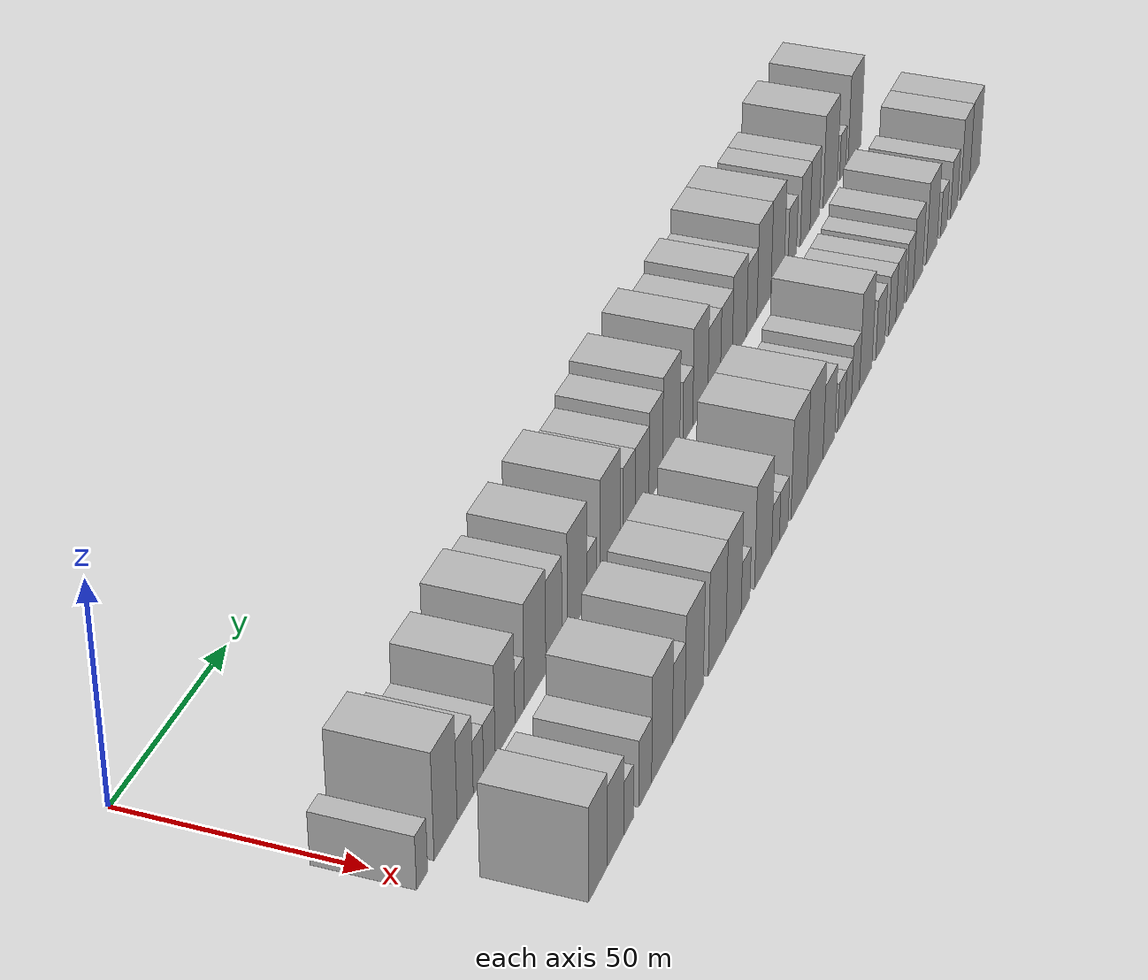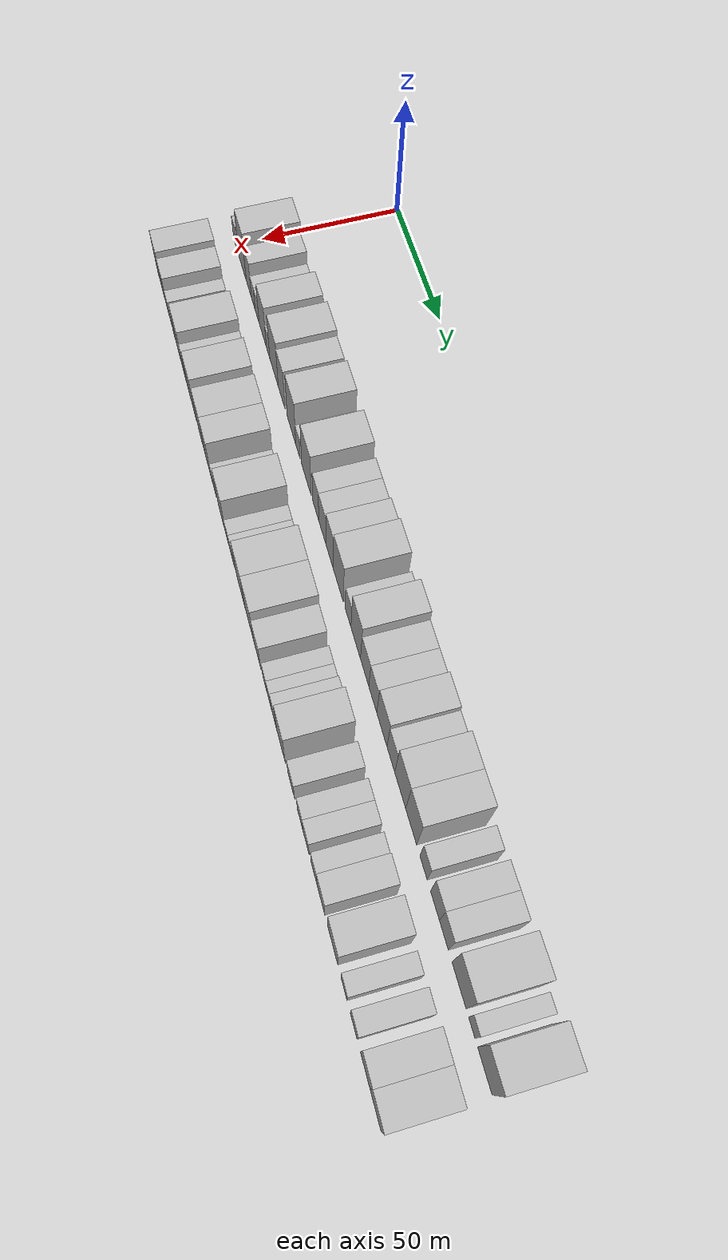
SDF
<sdf version="1.6">
 <world name="default">
  <model name="building_27">
   <static>1</static>
   <pose>50.0000 0.0869 0 0.000000 0.000000 0.000000</pose>
   <link name="link">
    <pose>0 0 6.00 0 0 0</pose>
    <collision name="collision"><geometry><box><size>20.0000 5.1384 12.0000</size></box></geometry></collision>
    <visual name="visual">
     <cast_shadows>0</cast_shadows>
     <geometry><box><size>20.0000 5.1384 12.0000</size></box></geometry>
     <material>
      <script>
       <uri>model://HANNAS_wall/materials/scripts</uri>
       <uri>model://HANNAS_wall/materials/textures</uri>
       <name>vrc/HANNAS_wall</name>
      </script>
     </material>
    </visual>
   </link>
  </model>
  <model name="building_28">
   <static>1</static>
   <pose>50.0000 11.1717 0 0.000000 0.000000 0.000000</pose>
   <link name="link">
    <pose>0 0 12.00 0 0 0</pose>
    <collision name="collision"><geometry><box><size>20.0000 11.0312 24.0000</size></box></geometry></collision>
    <visual name="visual">
     <cast_shadows>0</cast_shadows>
     <geometry><box><size>20.0000 11.0312 24.0000</size></box></geometry>
     <material>
      <script>
       <uri>model://HANNAS_wall/materials/scripts</uri>
       <uri>model://HANNAS_wall/materials/textures</uri>
       <name>vrc/HANNAS_wall</name>
      </script>
     </material>
    </visual>
   </link>
  </model>
  <model name="building_29">
   <static>1</static>
   <pose>50.0000 20.5993 0 0.000000 0.000000 0.000000</pose>
   <link name="link">
    <pose>0 0 9.00 0 0 0</pose>
    <collision name="collision"><geometry><box><size>20.0000 7.8240 18.0000</size></box></geometry></collision>
    <visual name="visual">
     <cast_shadows>0</cast_shadows>
     <geometry><box><size>20.0000 7.8240 18.0000</size></box></geometry>
     <material>
      <script>
       <uri>model://HANNAS_wall/materials/scripts</uri>
       <uri>model://HANNAS_wall/materials/textures</uri>
       <name>vrc/HANNAS_wall</name>
      </script>
     </material>
    </visual>
   </link>
  </model>
  <model name="building_30">
   <static>1</static>
   <pose>50.0000 27.1070 0 0.000000 0.000000 0.000000</pose>
   <link name="link">
    <pose>0 0 6.00 0 0 0</pose>
    <collision name="collision"><geometry><box><size>20.0000 5.1913 12.0000</size></box></geometry></collision>
    <visual name="visual">
     <cast_shadows>0</cast_shadows>
     <geometry><box><size>20.0000 5.1913 12.0000</size></box></geometry>
     <material>
      <script>
       <uri>model://HANNAS_wall/materials/scripts</uri>
       <uri>model://HANNAS_wall/materials/textures</uri>
       <name>vrc/HANNAS_wall</name>
      </script>
     </material>
    </visual>
   </link>
  </model>
  <model name="building_31">
   <static>1</static>
   <pose>50.0000 32.6259 0 0.000000 0.000000 0.000000</pose>
   <link name="link">
    <pose>0 0 6.00 0 0 0</pose>
    <collision name="collision"><geometry><box><size>20.0000 5.8464 12.0000</size></box></geometry></collision>
    <visual name="visual">
     <cast_shadows>0</cast_shadows>
     <geometry><box><size>20.0000 5.8464 12.0000</size></box></geometry>
     <material>
      <script>
       <uri>model://HANNAS_wall/materials/scripts</uri>
       <uri>model://HANNAS_wall/materials/textures</uri>
       <name>vrc/HANNAS_wall</name>
      </script>
     </material>
    </visual>
   </link>
  </model>
  <model name="building_32">
   <static>1</static>
   <pose>50.0000 40.5985 0 0.000000 0.000000 0.000000</pose>
   <link name="link">
    <pose>0 0 10.50 0 0 0</pose>
    <collision name="collision"><geometry><box><size>20.0000 10.0989 21.0000</size></box></geometry></collision>
    <visual name="visual">
     <cast_shadows>0</cast_shadows>
     <geometry><box><size>20.0000 10.0989 21.0000</size></box></geometry>
     <material>
      <script>
       <uri>model://HANNAS_wall/materials/scripts</uri>
       <uri>model://HANNAS_wall/materials/textures</uri>
       <name>vrc/HANNAS_wall</name>
      </script>
     </material>
    </visual>
   </link>
  </model>
  <model name="building_33">
   <static>1</static>
   <pose>50.0000 48.1005 0 0.000000 0.000000 0.000000</pose>
   <link name="link">
    <pose>0 0 6.00 0 0 0</pose>
    <collision name="collision"><geometry><box><size>20.0000 4.9049 12.0000</size></box></geometry></collision>
    <visual name="visual">
     <cast_shadows>0</cast_shadows>
     <geometry><box><size>20.0000 4.9049 12.0000</size></box></geometry>
     <material>
      <script>
       <uri>model://HANNAS_wall/materials/scripts</uri>
       <uri>model://HANNAS_wall/materials/textures</uri>
       <name>vrc/HANNAS_wall</name>
      </script>
     </material>
    </visual>
   </link>
  </model>
  <model name="building_34">
   <static>1</static>
   <pose>50.0000 56.3387 0 0.000000 0.000000 0.000000</pose>
   <link name="link">
    <pose>0 0 12.00 0 0 0</pose>
    <collision name="collision"><geometry><box><size>20.0000 11.5715 24.0000</size></box></geometry></collision>
    <visual name="visual">
     <cast_shadows>0</cast_shadows>
     <geometry><box><size>20.0000 11.5715 24.0000</size></box></geometry>
     <material>
      <script>
       <uri>model://HANNAS_wall/materials/scripts</uri>
       <uri>model://HANNAS_wall/materials/textures</uri>
       <name>vrc/HANNAS_wall</name>
      </script>
     </material>
    </visual>
   </link>
  </model>
  <model name="building_35">
   <static>1</static>
   <pose>50.0000 66.5732 0 0.000000 0.000000 0.000000</pose>
   <link name="link">
    <pose>0 0 10.50 0 0 0</pose>
    <collision name="collision"><geometry><box><size>20.0000 8.8975 21.0000</size></box></geometry></collision>
    <visual name="visual">
     <cast_shadows>0</cast_shadows>
     <geometry><box><size>20.0000 8.8975 21.0000</size></box></geometry>
     <material>
      <script>
       <uri>model://HANNAS_wall/materials/scripts</uri>
       <uri>model://HANNAS_wall/materials/textures</uri>
       <name>vrc/HANNAS_wall</name>
      </script>
     </material>
    </visual>
   </link>
  </model>
  <model name="building_36">
   <static>1</static>
   <pose>50.0000 79.5994 0 0.000000 0.000000 0.000000</pose>
   <link name="link">
    <pose>0 0 12.00 0 0 0</pose>
    <collision name="collision"><geometry><box><size>20.0000 11.1550 24.0000</size></box></geometry></collision>
    <visual name="visual">
     <cast_shadows>0</cast_shadows>
     <geometry><box><size>20.0000 11.1550 24.0000</size></box></geometry>
     <material>
      <script>
       <uri>model://HANNAS_wall/materials/scripts</uri>
       <uri>model://HANNAS_wall/materials/textures</uri>
       <name>vrc/HANNAS_wall</name>
      </script>
     </material>
    </visual>
   </link>
  </model>
  <model name="building_37">
   <static>1</static>
   <pose>50.0000 87.9173 0 0.000000 0.000000 0.000000</pose>
   <link name="link">
    <pose>0 0 6.00 0 0 0</pose>
    <collision name="collision"><geometry><box><size>20.0000 5.4807 12.0000</size></box></geometry></collision>
    <visual name="visual">
     <cast_shadows>0</cast_shadows>
     <geometry><box><size>20.0000 5.4807 12.0000</size></box></geometry>
     <material>
      <script>
       <uri>model://HANNAS_wall/materials/scripts</uri>
       <uri>model://HANNAS_wall/materials/textures</uri>
       <name>vrc/HANNAS_wall</name>
      </script>
     </material>
    </visual>
   </link>
  </model>
  <model name="building_38">
   <static>1</static>
   <pose>50.0000 98.5186 0 0.000000 0.000000 0.000000</pose>
   <link name="link">
    <pose>0 0 12.00 0 0 0</pose>
    <collision name="collision"><geometry><box><size>20.0000 11.7219 24.0000</size></box></geometry></collision>
    <visual name="visual">
     <cast_shadows>0</cast_shadows>
     <geometry><box><size>20.0000 11.7219 24.0000</size></box></geometry>
     <material>
      <script>
       <uri>model://HANNAS_wall/materials/scripts</uri>
       <uri>model://HANNAS_wall/materials/textures</uri>
       <name>vrc/HANNAS_wall</name>
      </script>
     </material>
    </visual>
   </link>
  </model>
  <model name="building_39">
   <static>1</static>
   <pose>50.0000 109.9865 0 0.000000 0.000000 0.000000</pose>
   <link name="link">
    <pose>0 0 9.00 0 0 0</pose>
    <collision name="collision"><geometry><box><size>20.0000 7.2139 18.0000</size></box></geometry></collision>
    <visual name="visual">
     <cast_shadows>0</cast_shadows>
     <geometry><box><size>20.0000 7.2139 18.0000</size></box></geometry>
     <material>
      <script>
       <uri>model://HANNAS_wall/materials/scripts</uri>
       <uri>model://HANNAS_wall/materials/textures</uri>
       <name>vrc/HANNAS_wall</name>
      </script>
     </material>
    </visual>
   </link>
  </model>
  <model name="building_40">
   <static>1</static>
   <pose>50.0000 117.9040 0 0.000000 0.000000 0.000000</pose>
   <link name="link">
    <pose>0 0 9.00 0 0 0</pose>
    <collision name="collision"><geometry><box><size>20.0000 8.6211 18.0000</size></box></geometry></collision>
    <visual name="visual">
     <cast_shadows>0</cast_shadows>
     <geometry><box><size>20.0000 8.6211 18.0000</size></box></geometry>
     <material>
      <script>
       <uri>model://HANNAS_wall/materials/scripts</uri>
       <uri>model://HANNAS_wall/materials/textures</uri>
       <name>vrc/HANNAS_wall</name>
      </script>
     </material>
    </visual>
   </link>
  </model>
  <model name="building_41">
   <static>1</static>
   <pose>50.0000 126.5039 0 0.000000 0.000000 0.000000</pose>
   <link name="link">
    <pose>0 0 10.50 0 0 0</pose>
    <collision name="collision"><geometry><box><size>20.0000 8.5786 21.0000</size></box></geometry></collision>
    <visual name="visual">
     <cast_shadows>0</cast_shadows>
     <geometry><box><size>20.0000 8.5786 21.0000</size></box></geometry>
     <material>
      <script>
       <uri>model://HANNAS_wall/materials/scripts</uri>
       <uri>model://HANNAS_wall/materials/textures</uri>
       <name>vrc/HANNAS_wall</name>
      </script>
     </material>
    </visual>
   </link>
  </model>
  <model name="building_42">
   <static>1</static>
   <pose>50.0000 136.4017 0 0.000000 0.000000 0.000000</pose>
   <link name="link">
    <pose>0 0 12.00 0 0 0</pose>
    <collision name="collision"><geometry><box><size>20.0000 11.2170 24.0000</size></box></geometry></collision>
    <visual name="visual">
     <cast_shadows>0</cast_shadows>
     <geometry><box><size>20.0000 11.2170 24.0000</size></box></geometry>
     <material>
      <script>
       <uri>model://HANNAS_wall/materials/scripts</uri>
       <uri>model://HANNAS_wall/materials/textures</uri>
       <name>vrc/HANNAS_wall</name>
      </script>
     </material>
    </visual>
   </link>
  </model>
  <model name="building_43">
   <static>1</static>
   <pose>50.0000 147.2961 0 0.000000 0.000000 0.000000</pose>
   <link name="link">
    <pose>0 0 7.50 0 0 0</pose>
    <collision name="collision"><geometry><box><size>20.0000 6.5718 15.0000</size></box></geometry></collision>
    <visual name="visual">
     <cast_shadows>0</cast_shadows>
     <geometry><box><size>20.0000 6.5718 15.0000</size></box></geometry>
     <material>
      <script>
       <uri>model://HANNAS_wall/materials/scripts</uri>
       <uri>model://HANNAS_wall/materials/textures</uri>
       <name>vrc/HANNAS_wall</name>
      </script>
     </material>
    </visual>
   </link>
  </model>
  <model name="building_44">
   <static>1</static>
   <pose>50.0000 155.6939 0 0.000000 0.000000 0.000000</pose>
   <link name="link">
    <pose>0 0 12.00 0 0 0</pose>
    <collision name="collision"><geometry><box><size>20.0000 10.2238 24.0000</size></box></geometry></collision>
    <visual name="visual">
     <cast_shadows>0</cast_shadows>
     <geometry><box><size>20.0000 10.2238 24.0000</size></box></geometry>
     <material>
      <script>
       <uri>model://HANNAS_wall/materials/scripts</uri>
       <uri>model://HANNAS_wall/materials/textures</uri>
       <name>vrc/HANNAS_wall</name>
      </script>
     </material>
    </visual>
   </link>
  </model>
  <model name="building_45">
   <static>1</static>
   <pose>50.0000 165.1732 0 0.000000 0.000000 0.000000</pose>
   <link name="link">
    <pose>0 0 9.00 0 0 0</pose>
    <collision name="collision"><geometry><box><size>20.0000 8.7346 18.0000</size></box></geometry></collision>
    <visual name="visual">
     <cast_shadows>0</cast_shadows>
     <geometry><box><size>20.0000 8.7346 18.0000</size></box></geometry>
     <material>
      <script>
       <uri>model://HANNAS_wall/materials/scripts</uri>
       <uri>model://HANNAS_wall/materials/textures</uri>
       <name>vrc/HANNAS_wall</name>
      </script>
     </material>
    </visual>
   </link>
  </model>
  <model name="building_46">
   <static>1</static>
   <pose>50.0000 173.6865 0 0.000000 0.000000 0.000000</pose>
   <link name="link">
    <pose>0 0 9.00 0 0 0</pose>
    <collision name="collision"><geometry><box><size>20.0000 8.2920 18.0000</size></box></geometry></collision>
    <visual name="visual">
     <cast_shadows>0</cast_shadows>
     <geometry><box><size>20.0000 8.2920 18.0000</size></box></geometry>
     <material>
      <script>
       <uri>model://HANNAS_wall/materials/scripts</uri>
       <uri>model://HANNAS_wall/materials/textures</uri>
       <name>vrc/HANNAS_wall</name>
      </script>
     </material>
    </visual>
   </link>
  </model>
  <model name="building_47">
   <static>1</static>
   <pose>50.0000 182.9807 0 0.000000 0.000000 0.000000</pose>
   <link name="link">
    <pose>0 0 10.50 0 0 0</pose>
    <collision name="collision"><geometry><box><size>20.0000 10.2964 21.0000</size></box></geometry></collision>
    <visual name="visual">
     <cast_shadows>0</cast_shadows>
     <geometry><box><size>20.0000 10.2964 21.0000</size></box></geometry>
     <material>
      <script>
       <uri>model://HANNAS_wall/materials/scripts</uri>
       <uri>model://HANNAS_wall/materials/textures</uri>
       <name>vrc/HANNAS_wall</name>
      </script>
     </material>
    </visual>
   </link>
  </model>
  <model name="building_48">
   <static>1</static>
   <pose>50.0000 191.9526 0 0.000000 0.000000 0.000000</pose>
   <link name="link">
    <pose>0 0 9.00 0 0 0</pose>
    <collision name="collision"><geometry><box><size>20.0000 7.6473 18.0000</size></box></geometry></collision>
    <visual name="visual">
     <cast_shadows>0</cast_shadows>
     <geometry><box><size>20.0000 7.6473 18.0000</size></box></geometry>
     <material>
      <script>
       <uri>model://HANNAS_wall/materials/scripts</uri>
       <uri>model://HANNAS_wall/materials/textures</uri>
       <name>vrc/HANNAS_wall</name>
      </script>
     </material>
    </visual>
   </link>
  </model>
  <model name="building_49">
   <static>1</static>
   <pose>50.0000 201.0170 0 0.000000 0.000000 0.000000</pose>
   <link name="link">
    <pose>0 0 12.00 0 0 0</pose>
    <collision name="collision"><geometry><box><size>20.0000 10.4815 24.0000</size></box></geometry></collision>
    <visual name="visual">
     <cast_shadows>0</cast_shadows>
     <geometry><box><size>20.0000 10.4815 24.0000</size></box></geometry>
     <material>
      <script>
       <uri>model://HANNAS_wall/materials/scripts</uri>
       <uri>model://HANNAS_wall/materials/textures</uri>
       <name>vrc/HANNAS_wall</name>
      </script>
     </material>
    </visual>
   </link>
  </model>
  <model name="building_50">
   <static>1</static>
   <pose>50.0000 211.3477 0 0.000000 0.000000 0.000000</pose>
   <link name="link">
    <pose>0 0 12.00 0 0 0</pose>
    <collision name="collision"><geometry><box><size>20.0000 10.1798 24.0000</size></box></geometry></collision>
    <visual name="visual">
     <cast_shadows>0</cast_shadows>
     <geometry><box><size>20.0000 10.1798 24.0000</size></box></geometry>
     <material>
      <script>
       <uri>model://HANNAS_wall/materials/scripts</uri>
       <uri>model://HANNAS_wall/materials/textures</uri>
       <name>vrc/HANNAS_wall</name>
      </script>
     </material>
    </visual>
   </link>
  </model>
  <model name="building_51">
   <static>1</static>
   <pose>50.0000 222.7443 0 0.000000 0.000000 0.000000</pose>
   <link name="link">
    <pose>0 0 7.50 0 0 0</pose>
    <collision name="collision"><geometry><box><size>20.0000 6.6134 15.0000</size></box></geometry></collision>
    <visual name="visual">
     <cast_shadows>0</cast_shadows>
     <geometry><box><size>20.0000 6.6134 15.0000</size></box></geometry>
     <material>
      <script>
       <uri>model://HANNAS_wall/materials/scripts</uri>
       <uri>model://HANNAS_wall/materials/textures</uri>
       <name>vrc/HANNAS_wall</name>
      </script>
     </material>
    </visual>
   </link>
  </model>
  <model name="building_52">
   <static>1</static>
   <pose>50.0000 232.9578 0 0.000000 0.000000 0.000000</pose>
   <link name="link">
    <pose>0 0 9.00 0 0 0</pose>
    <collision name="collision"><geometry><box><size>20.0000 7.8135 18.0000</size></box></geometry></collision>
    <visual name="visual">
     <cast_shadows>0</cast_shadows>
     <geometry><box><size>20.0000 7.8135 18.0000</size></box></geometry>
     <material>
      <script>
       <uri>model://HANNAS_wall/materials/scripts</uri>
       <uri>model://HANNAS_wall/materials/textures</uri>
       <name>vrc/HANNAS_wall</name>
      </script>
     </material>
    </visual>
   </link>
  </model>
  <model name="building_53">
   <static>1</static>
   <pose>50.0000 240.6961 0 0.000000 0.000000 0.000000</pose>
   <link name="link">
    <pose>0 0 9.00 0 0 0</pose>
    <collision name="collision"><geometry><box><size>20.0000 7.6631 18.0000</size></box></geometry></collision>
    <visual name="visual">
     <cast_shadows>0</cast_shadows>
     <geometry><box><size>20.0000 7.6631 18.0000</size></box></geometry>
     <material>
      <script>
       <uri>model://HANNAS_wall/materials/scripts</uri>
       <uri>model://HANNAS_wall/materials/textures</uri>
       <name>vrc/HANNAS_wall</name>
      </script>
     </material>
    </visual>
   </link>
  </model>
  <model name="building_54">
   <static>1</static>
   <pose>50.0000 253.4060 0 0.000000 0.000000 0.000000</pose>
   <link name="link">
    <pose>0 0 12.00 0 0 0</pose>
    <collision name="collision"><geometry><box><size>20.0000 11.7568 24.0000</size></box></geometry></collision>
    <visual name="visual">
     <cast_shadows>0</cast_shadows>
     <geometry><box><size>20.0000 11.7568 24.0000</size></box></geometry>
     <material>
      <script>
       <uri>model://HANNAS_wall/materials/scripts</uri>
       <uri>model://HANNAS_wall/materials/textures</uri>
       <name>vrc/HANNAS_wall</name>
      </script>
     </material>
    </visual>
   </link>
  </model>
  <model name="building_55">
   <static>1</static>
   <pose>50.0000 263.8791 0 0.000000 0.000000 0.000000</pose>
   <link name="link">
    <pose>0 0 6.00 0 0 0</pose>
    <collision name="collision"><geometry><box><size>20.0000 5.1895 12.0000</size></box></geometry></collision>
    <visual name="visual">
     <cast_shadows>0</cast_shadows>
     <geometry><box><size>20.0000 5.1895 12.0000</size></box></geometry>
     <material>
      <script>
       <uri>model://HANNAS_wall/materials/scripts</uri>
       <uri>model://HANNAS_wall/materials/textures</uri>
       <name>vrc/HANNAS_wall</name>
      </script>
     </material>
    </visual>
   </link>
  </model>
  <model name="building_56">
   <static>1</static>
   <pose>50.0000 274.1354 0 0.000000 0.000000 0.000000</pose>
   <link name="link">
    <pose>0 0 12.00 0 0 0</pose>
    <collision name="collision"><geometry><box><size>20.0000 11.3231 24.0000</size></box></geometry></collision>
    <visual name="visual">
     <cast_shadows>0</cast_shadows>
     <geometry><box><size>20.0000 11.3231 24.0000</size></box></geometry>
     <material>
      <script>
       <uri>model://HANNAS_wall/materials/scripts</uri>
       <uri>model://HANNAS_wall/materials/textures</uri>
       <name>vrc/HANNAS_wall</name>
      </script>
     </material>
    </visual>
   </link>
  </model>
  <model name="building_90">
   <static>1</static>
   <pose>79.0000 9.2190 0 0.000000 0.000000 0.000000</pose>
   <link name="link">
    <pose>0 0 10.50 0 0 0</pose>
    <collision name="collision"><geometry><box><size>20.0000 9.6931 21.0000</size></box></geometry></collision>
    <visual name="visual">
     <cast_shadows>0</cast_shadows>
     <geometry><box><size>20.0000 9.6931 21.0000</size></box></geometry>
     <material>
      <script>
       <uri>model://HANNAS_wall/materials/scripts</uri>
       <uri>model://HANNAS_wall/materials/textures</uri>
       <name>vrc/HANNAS_wall</name>
      </script>
     </material>
    </visual>
   </link>
  </model>
  <model name="building_91">
   <static>1</static>
   <pose>79.0000 18.4818 0 0.000000 0.000000 0.000000</pose>
   <link name="link">
    <pose>0 0 9.00 0 0 0</pose>
    <collision name="collision"><geometry><box><size>20.0000 8.8325 18.0000</size></box></geometry></collision>
    <visual name="visual">
     <cast_shadows>0</cast_shadows>
     <geometry><box><size>20.0000 8.8325 18.0000</size></box></geometry>
     <material>
      <script>
       <uri>model://HANNAS_wall/materials/scripts</uri>
       <uri>model://HANNAS_wall/materials/textures</uri>
       <name>vrc/HANNAS_wall</name>
      </script>
     </material>
    </visual>
   </link>
  </model>
  <model name="building_92">
   <static>1</static>
   <pose>79.0000 25.4806 0 0.000000 0.000000 0.000000</pose>
   <link name="link">
    <pose>0 0 6.00 0 0 0</pose>
    <collision name="collision"><geometry><box><size>20.0000 5.1649 12.0000</size></box></geometry></collision>
    <visual name="visual">
     <cast_shadows>0</cast_shadows>
     <geometry><box><size>20.0000 5.1649 12.0000</size></box></geometry>
     <material>
      <script>
       <uri>model://HANNAS_wall/materials/scripts</uri>
       <uri>model://HANNAS_wall/materials/textures</uri>
       <name>vrc/HANNAS_wall</name>
      </script>
     </material>
    </visual>
   </link>
  </model>
  <model name="building_93">
   <static>1</static>
   <pose>79.0000 34.5791 0 0.000000 0.000000 0.000000</pose>
   <link name="link">
    <pose>0 0 7.50 0 0 0</pose>
    <collision name="collision"><geometry><box><size>20.0000 7.0321 15.0000</size></box></geometry></collision>
    <visual name="visual">
     <cast_shadows>0</cast_shadows>
     <geometry><box><size>20.0000 7.0321 15.0000</size></box></geometry>
     <material>
      <script>
       <uri>model://HANNAS_wall/materials/scripts</uri>
       <uri>model://HANNAS_wall/materials/textures</uri>
       <name>vrc/HANNAS_wall</name>
      </script>
     </material>
    </visual>
   </link>
  </model>
  <model name="building_94">
   <static>1</static>
   <pose>79.0000 43.9708 0 0.000000 0.000000 0.000000</pose>
   <link name="link">
    <pose>0 0 12.00 0 0 0</pose>
    <collision name="collision"><geometry><box><size>20.0000 11.7512 24.0000</size></box></geometry></collision>
    <visual name="visual">
     <cast_shadows>0</cast_shadows>
     <geometry><box><size>20.0000 11.7512 24.0000</size></box></geometry>
     <material>
      <script>
       <uri>model://HANNAS_wall/materials/scripts</uri>
       <uri>model://HANNAS_wall/materials/textures</uri>
       <name>vrc/HANNAS_wall</name>
      </script>
     </material>
    </visual>
   </link>
  </model>
  <model name="building_95">
   <static>1</static>
   <pose>79.0000 53.4867 0 0.000000 0.000000 0.000000</pose>
   <link name="link">
    <pose>0 0 9.00 0 0 0</pose>
    <collision name="collision"><geometry><box><size>20.0000 7.2806 18.0000</size></box></geometry></collision>
    <visual name="visual">
     <cast_shadows>0</cast_shadows>
     <geometry><box><size>20.0000 7.2806 18.0000</size></box></geometry>
     <material>
      <script>
       <uri>model://HANNAS_wall/materials/scripts</uri>
       <uri>model://HANNAS_wall/materials/textures</uri>
       <name>vrc/HANNAS_wall</name>
      </script>
     </material>
    </visual>
   </link>
  </model>
  <model name="building_96">
   <static>1</static>
   <pose>79.0000 62.6591 0 0.000000 0.000000 0.000000</pose>
   <link name="link">
    <pose>0 0 12.00 0 0 0</pose>
    <collision name="collision"><geometry><box><size>20.0000 11.0643 24.0000</size></box></geometry></collision>
    <visual name="visual">
     <cast_shadows>0</cast_shadows>
     <geometry><box><size>20.0000 11.0643 24.0000</size></box></geometry>
     <material>
      <script>
       <uri>model://HANNAS_wall/materials/scripts</uri>
       <uri>model://HANNAS_wall/materials/textures</uri>
       <name>vrc/HANNAS_wall</name>
      </script>
     </material>
    </visual>
   </link>
  </model>
  <model name="building_97">
   <static>1</static>
   <pose>79.0000 76.6093 0 0.000000 0.000000 0.000000</pose>
   <link name="link">
    <pose>0 0 12.00 0 0 0</pose>
    <collision name="collision"><geometry><box><size>20.0000 10.8360 24.0000</size></box></geometry></collision>
    <visual name="visual">
     <cast_shadows>0</cast_shadows>
     <geometry><box><size>20.0000 10.8360 24.0000</size></box></geometry>
     <material>
      <script>
       <uri>model://HANNAS_wall/materials/scripts</uri>
       <uri>model://HANNAS_wall/materials/textures</uri>
       <name>vrc/HANNAS_wall</name>
      </script>
     </material>
    </visual>
   </link>
  </model>
  <model name="building_98">
   <static>1</static>
   <pose>79.0000 86.8647 0 0.000000 0.000000 0.000000</pose>
   <link name="link">
    <pose>0 0 12.00 0 0 0</pose>
    <collision name="collision"><geometry><box><size>20.0000 9.6748 24.0000</size></box></geometry></collision>
    <visual name="visual">
     <cast_shadows>0</cast_shadows>
     <geometry><box><size>20.0000 9.6748 24.0000</size></box></geometry>
     <material>
      <script>
       <uri>model://HANNAS_wall/materials/scripts</uri>
       <uri>model://HANNAS_wall/materials/textures</uri>
       <name>vrc/HANNAS_wall</name>
      </script>
     </material>
    </visual>
   </link>
  </model>
  <model name="building_99">
   <static>1</static>
   <pose>79.0000 94.5459 0 0.000000 0.000000 0.000000</pose>
   <link name="link">
    <pose>0 0 6.00 0 0 0</pose>
    <collision name="collision"><geometry><box><size>20.0000 5.6878 12.0000</size></box></geometry></collision>
    <visual name="visual">
     <cast_shadows>0</cast_shadows>
     <geometry><box><size>20.0000 5.6878 12.0000</size></box></geometry>
     <material>
      <script>
       <uri>model://HANNAS_wall/materials/scripts</uri>
       <uri>model://HANNAS_wall/materials/textures</uri>
       <name>vrc/HANNAS_wall</name>
      </script>
     </material>
    </visual>
   </link>
  </model>
  <model name="building_100">
   <static>1</static>
   <pose>79.0000 106.0434 0 0.000000 0.000000 0.000000</pose>
   <link name="link">
    <pose>0 0 12.00 0 0 0</pose>
    <collision name="collision"><geometry><box><size>20.0000 11.3072 24.0000</size></box></geometry></collision>
    <visual name="visual">
     <cast_shadows>0</cast_shadows>
     <geometry><box><size>20.0000 11.3072 24.0000</size></box></geometry>
     <material>
      <script>
       <uri>model://HANNAS_wall/materials/scripts</uri>
       <uri>model://HANNAS_wall/materials/textures</uri>
       <name>vrc/HANNAS_wall</name>
      </script>
     </material>
    </visual>
   </link>
  </model>
  <model name="building_101">
   <static>1</static>
   <pose>79.0000 114.3317 0 0.000000 0.000000 0.000000</pose>
   <link name="link">
    <pose>0 0 6.00 0 0 0</pose>
    <collision name="collision"><geometry><box><size>20.0000 5.2694 12.0000</size></box></geometry></collision>
    <visual name="visual">
     <cast_shadows>0</cast_shadows>
     <geometry><box><size>20.0000 5.2694 12.0000</size></box></geometry>
     <material>
      <script>
       <uri>model://HANNAS_wall/materials/scripts</uri>
       <uri>model://HANNAS_wall/materials/textures</uri>
       <name>vrc/HANNAS_wall</name>
      </script>
     </material>
    </visual>
   </link>
  </model>
  <model name="building_102">
   <static>1</static>
   <pose>79.0000 119.9506 0 0.000000 0.000000 0.000000</pose>
   <link name="link">
    <pose>0 0 6.00 0 0 0</pose>
    <collision name="collision"><geometry><box><size>20.0000 5.9684 12.0000</size></box></geometry></collision>
    <visual name="visual">
     <cast_shadows>0</cast_shadows>
     <geometry><box><size>20.0000 5.9684 12.0000</size></box></geometry>
     <material>
      <script>
       <uri>model://HANNAS_wall/materials/scripts</uri>
       <uri>model://HANNAS_wall/materials/textures</uri>
       <name>vrc/HANNAS_wall</name>
      </script>
     </material>
    </visual>
   </link>
  </model>
  <model name="building_103">
   <static>1</static>
   <pose>79.0000 130.6318 0 0.000000 0.000000 0.000000</pose>
   <link name="link">
    <pose>0 0 12.00 0 0 0</pose>
    <collision name="collision"><geometry><box><size>20.0000 11.3939 24.0000</size></box></geometry></collision>
    <visual name="visual">
     <cast_shadows>0</cast_shadows>
     <geometry><box><size>20.0000 11.3939 24.0000</size></box></geometry>
     <material>
      <script>
       <uri>model://HANNAS_wall/materials/scripts</uri>
       <uri>model://HANNAS_wall/materials/textures</uri>
       <name>vrc/HANNAS_wall</name>
      </script>
     </material>
    </visual>
   </link>
  </model>
  <model name="building_104">
   <static>1</static>
   <pose>79.0000 142.0269 0 0.000000 0.000000 0.000000</pose>
   <link name="link">
    <pose>0 0 12.00 0 0 0</pose>
    <collision name="collision"><geometry><box><size>20.0000 11.3963 24.0000</size></box></geometry></collision>
    <visual name="visual">
     <cast_shadows>0</cast_shadows>
     <geometry><box><size>20.0000 11.3963 24.0000</size></box></geometry>
     <material>
      <script>
       <uri>model://HANNAS_wall/materials/scripts</uri>
       <uri>model://HANNAS_wall/materials/textures</uri>
       <name>vrc/HANNAS_wall</name>
      </script>
     </material>
    </visual>
   </link>
  </model>
  <model name="building_105">
   <static>1</static>
   <pose>79.0000 152.1607 0 0.000000 0.000000 0.000000</pose>
   <link name="link">
    <pose>0 0 9.00 0 0 0</pose>
    <collision name="collision"><geometry><box><size>20.0000 8.8713 18.0000</size></box></geometry></collision>
    <visual name="visual">
     <cast_shadows>0</cast_shadows>
     <geometry><box><size>20.0000 8.8713 18.0000</size></box></geometry>
     <material>
      <script>
       <uri>model://HANNAS_wall/materials/scripts</uri>
       <uri>model://HANNAS_wall/materials/textures</uri>
       <name>vrc/HANNAS_wall</name>
      </script>
     </material>
    </visual>
   </link>
  </model>
  <model name="building_106">
   <static>1</static>
   <pose>79.0000 161.3516 0 0.000000 0.000000 0.000000</pose>
   <link name="link">
    <pose>0 0 6.00 0 0 0</pose>
    <collision name="collision"><geometry><box><size>20.0000 5.5106 12.0000</size></box></geometry></collision>
    <visual name="visual">
     <cast_shadows>0</cast_shadows>
     <geometry><box><size>20.0000 5.5106 12.0000</size></box></geometry>
     <material>
      <script>
       <uri>model://HANNAS_wall/materials/scripts</uri>
       <uri>model://HANNAS_wall/materials/textures</uri>
       <name>vrc/HANNAS_wall</name>
      </script>
     </material>
    </visual>
   </link>
  </model>
  <model name="building_107">
   <static>1</static>
   <pose>79.0000 166.5634 0 0.000000 0.000000 0.000000</pose>
   <link name="link">
    <pose>0 0 6.00 0 0 0</pose>
    <collision name="collision"><geometry><box><size>20.0000 4.9130 12.0000</size></box></geometry></collision>
    <visual name="visual">
     <cast_shadows>0</cast_shadows>
     <geometry><box><size>20.0000 4.9130 12.0000</size></box></geometry>
     <material>
      <script>
       <uri>model://HANNAS_wall/materials/scripts</uri>
       <uri>model://HANNAS_wall/materials/textures</uri>
       <name>vrc/HANNAS_wall</name>
      </script>
     </material>
    </visual>
   </link>
  </model>
  <model name="building_108">
   <static>1</static>
   <pose>79.0000 172.1433 0 0.000000 0.000000 0.000000</pose>
   <link name="link">
    <pose>0 0 7.50 0 0 0</pose>
    <collision name="collision"><geometry><box><size>20.0000 6.2468 15.0000</size></box></geometry></collision>
    <visual name="visual">
     <cast_shadows>0</cast_shadows>
     <geometry><box><size>20.0000 6.2468 15.0000</size></box></geometry>
     <material>
      <script>
       <uri>model://HANNAS_wall/materials/scripts</uri>
       <uri>model://HANNAS_wall/materials/textures</uri>
       <name>vrc/HANNAS_wall</name>
      </script>
     </material>
    </visual>
   </link>
  </model>
  <model name="building_109">
   <static>1</static>
   <pose>79.0000 180.2453 0 0.000000 0.000000 0.000000</pose>
   <link name="link">
    <pose>0 0 12.00 0 0 0</pose>
    <collision name="collision"><geometry><box><size>20.0000 9.9573 24.0000</size></box></geometry></collision>
    <visual name="visual">
     <cast_shadows>0</cast_shadows>
     <geometry><box><size>20.0000 9.9573 24.0000</size></box></geometry>
     <material>
      <script>
       <uri>model://HANNAS_wall/materials/scripts</uri>
       <uri>model://HANNAS_wall/materials/textures</uri>
       <name>vrc/HANNAS_wall</name>
      </script>
     </material>
    </visual>
   </link>
  </model>
  <model name="building_110">
   <static>1</static>
   <pose>79.0000 191.9189 0 0.000000 0.000000 0.000000</pose>
   <link name="link">
    <pose>0 0 7.50 0 0 0</pose>
    <collision name="collision"><geometry><box><size>20.0000 7.3900 15.0000</size></box></geometry></collision>
    <visual name="visual">
     <cast_shadows>0</cast_shadows>
     <geometry><box><size>20.0000 7.3900 15.0000</size></box></geometry>
     <material>
      <script>
       <uri>model://HANNAS_wall/materials/scripts</uri>
       <uri>model://HANNAS_wall/materials/textures</uri>
       <name>vrc/HANNAS_wall</name>
      </script>
     </material>
    </visual>
   </link>
  </model>
  <model name="building_111">
   <static>1</static>
   <pose>79.0000 201.6500 0 0.000000 0.000000 0.000000</pose>
   <link name="link">
    <pose>0 0 7.50 0 0 0</pose>
    <collision name="collision"><geometry><box><size>20.0000 6.0720 15.0000</size></box></geometry></collision>
    <visual name="visual">
     <cast_shadows>0</cast_shadows>
     <geometry><box><size>20.0000 6.0720 15.0000</size></box></geometry>
     <material>
      <script>
       <uri>model://HANNAS_wall/materials/scripts</uri>
       <uri>model://HANNAS_wall/materials/textures</uri>
       <name>vrc/HANNAS_wall</name>
      </script>
     </material>
    </visual>
   </link>
  </model>
  <model name="building_112">
   <static>1</static>
   <pose>79.0000 207.9796 0 0.000000 0.000000 0.000000</pose>
   <link name="link">
    <pose>0 0 7.50 0 0 0</pose>
    <collision name="collision"><geometry><box><size>20.0000 6.5873 15.0000</size></box></geometry></collision>
    <visual name="visual">
     <cast_shadows>0</cast_shadows>
     <geometry><box><size>20.0000 6.5873 15.0000</size></box></geometry>
     <material>
      <script>
       <uri>model://HANNAS_wall/materials/scripts</uri>
       <uri>model://HANNAS_wall/materials/textures</uri>
       <name>vrc/HANNAS_wall</name>
      </script>
     </material>
    </visual>
   </link>
  </model>
  <model name="building_113">
   <static>1</static>
   <pose>79.0000 216.3183 0 0.000000 0.000000 0.000000</pose>
   <link name="link">
    <pose>0 0 7.50 0 0 0</pose>
    <collision name="collision"><geometry><box><size>20.0000 6.0900 15.0000</size></box></geometry></collision>
    <visual name="visual">
     <cast_shadows>0</cast_shadows>
     <geometry><box><size>20.0000 6.0900 15.0000</size></box></geometry>
     <material>
      <script>
       <uri>model://HANNAS_wall/materials/scripts</uri>
       <uri>model://HANNAS_wall/materials/textures</uri>
       <name>vrc/HANNAS_wall</name>
      </script>
     </material>
    </visual>
   </link>
  </model>
  <model name="building_114">
   <static>1</static>
   <pose>79.0000 223.4236 0 0.000000 0.000000 0.000000</pose>
   <link name="link">
    <pose>0 0 9.00 0 0 0</pose>
    <collision name="collision"><geometry><box><size>20.0000 8.1207 18.0000</size></box></geometry></collision>
    <visual name="visual">
     <cast_shadows>0</cast_shadows>
     <geometry><box><size>20.0000 8.1207 18.0000</size></box></geometry>
     <material>
      <script>
       <uri>model://HANNAS_wall/materials/scripts</uri>
       <uri>model://HANNAS_wall/materials/textures</uri>
       <name>vrc/HANNAS_wall</name>
      </script>
     </material>
    </visual>
   </link>
  </model>
  <model name="building_115">
   <static>1</static>
   <pose>79.0000 235.4078 0 0.000000 0.000000 0.000000</pose>
   <link name="link">
    <pose>0 0 10.50 0 0 0</pose>
    <collision name="collision"><geometry><box><size>20.0000 9.8478 21.0000</size></box></geometry></collision>
    <visual name="visual">
     <cast_shadows>0</cast_shadows>
     <geometry><box><size>20.0000 9.8478 21.0000</size></box></geometry>
     <material>
      <script>
       <uri>model://HANNAS_wall/materials/scripts</uri>
       <uri>model://HANNAS_wall/materials/textures</uri>
       <name>vrc/HANNAS_wall</name>
      </script>
     </material>
    </visual>
   </link>
  </model>
  <model name="building_116">
   <static>1</static>
   <pose>79.0000 246.3100 0 0.000000 0.000000 0.000000</pose>
   <link name="link">
    <pose>0 0 6.00 0 0 0</pose>
    <collision name="collision"><geometry><box><size>20.0000 5.9565 12.0000</size></box></geometry></collision>
    <visual name="visual">
     <cast_shadows>0</cast_shadows>
     <geometry><box><size>20.0000 5.9565 12.0000</size></box></geometry>
     <material>
      <script>
       <uri>model://HANNAS_wall/materials/scripts</uri>
       <uri>model://HANNAS_wall/materials/textures</uri>
       <name>vrc/HANNAS_wall</name>
      </script>
     </material>
    </visual>
   </link>
  </model>
  <model name="building_117">
   <static>1</static>
   <pose>79.0000 255.5266 0 0.000000 0.000000 0.000000</pose>
   <link name="link">
    <pose>0 0 7.50 0 0 0</pose>
    <collision name="collision"><geometry><box><size>20.0000 6.4767 15.0000</size></box></geometry></collision>
    <visual name="visual">
     <cast_shadows>0</cast_shadows>
     <geometry><box><size>20.0000 6.4767 15.0000</size></box></geometry>
     <material>
      <script>
       <uri>model://HANNAS_wall/materials/scripts</uri>
       <uri>model://HANNAS_wall/materials/textures</uri>
       <name>vrc/HANNAS_wall</name>
      </script>
     </material>
    </visual>
   </link>
  </model>
  <model name="building_118">
   <static>1</static>
   <pose>79.0000 266.0388 0 0.000000 0.000000 0.000000</pose>
   <link name="link">
    <pose>0 0 10.50 0 0 0</pose>
    <collision name="collision"><geometry><box><size>20.0000 8.5477 21.0000</size></box></geometry></collision>
    <visual name="visual">
     <cast_shadows>0</cast_shadows>
     <geometry><box><size>20.0000 8.5477 21.0000</size></box></geometry>
     <material>
      <script>
       <uri>model://HANNAS_wall/materials/scripts</uri>
       <uri>model://HANNAS_wall/materials/textures</uri>
       <name>vrc/HANNAS_wall</name>
      </script>
     </material>
    </visual>
   </link>
  </model>
  <model name="building_119">
   <static>1</static>
   <pose>79.0000 275.1598 0 0.000000 0.000000 0.000000</pose>
   <link name="link">
    <pose>0 0 10.50 0 0 0</pose>
    <collision name="collision"><geometry><box><size>20.0000 9.6944 21.0000</size></box></geometry></collision>
    <visual name="visual">
     <cast_shadows>0</cast_shadows>
     <geometry><box><size>20.0000 9.6944 21.0000</size></box></geometry>
     <material>
      <script>
       <uri>model://HANNAS_wall/materials/scripts</uri>
       <uri>model://HANNAS_wall/materials/textures</uri>
       <name>vrc/HANNAS_wall</name>
      </script>
     </material>
    </visual>
   </link>
  </model>
 </world>
</sdf>
